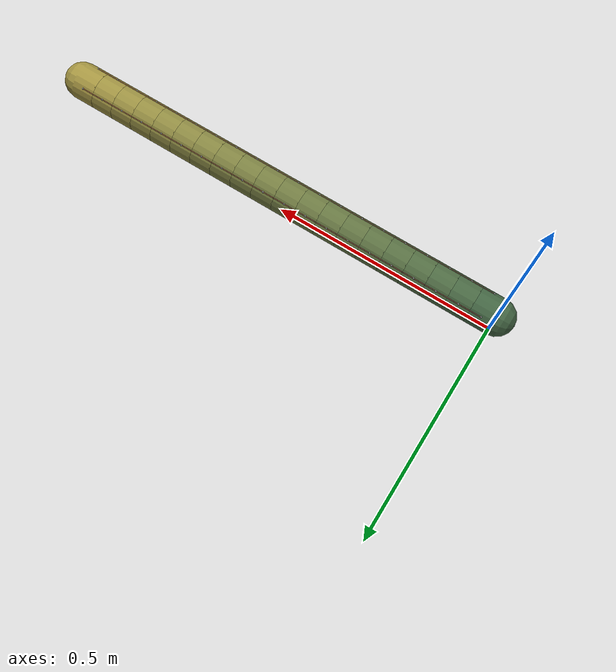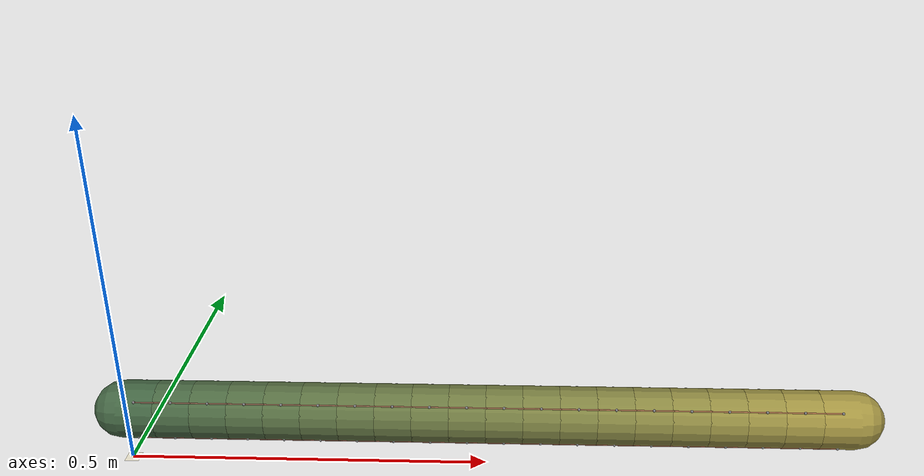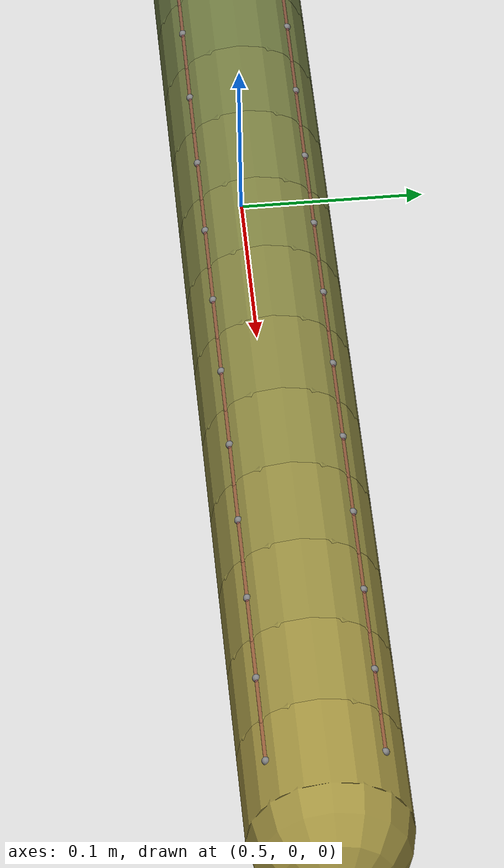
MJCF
<mujoco model="c_elegans_wormbody_v3">
  <compiler angle="radian" autolimits="true"/>
  <option timestep="0.0005" integrator="implicitfast" viscosity="1.0e-3" density="1000"/>
  <visual>
    <headlight diffuse="0.8 0.8 0.8" ambient="0.3 0.3 0.3" specular="0.2 0.2 0.2"/>
    <global offwidth="1200" offheight="800"/>
  </visual>
  <default>
    <joint damping="0.5" stiffness="0.0" limited="true" range="-0.5 0.5"/>
    <geom density="1000" friction="0.5 0.1 0.01"/>
  </default>
  <worldbody>
    <geom name="substrate" type="plane" size="0.01 0.01 0.001" rgba="0.95 0.92 0.82 1"/>
    <light name="overhead" pos="0 0 0.02" dir="0 0 -1" diffuse="0.8 0.8 0.8"/>
    <body name="segment_0" pos="0 0 0.08" euler="0 0 0">
      <freejoint name="root"/>
      <geom name="geom_0" type="capsule" fromto="0 0 0 0.05 0 0" size="0.04" rgba="0.25 0.38 0.25 1"/>
      <site name="s0_DL" pos="0.025000 0.028000 0.028000" size="0.002"/>
      <site name="s0_DR" pos="0.025000 -0.028000 0.028000" size="0.002"/>
      <site name="s0_VL" pos="0.025000 0.028000 -0.028000" size="0.002"/>
      <site name="s0_VR" pos="0.025000 -0.028000 -0.028000" size="0.002"/>
      <body name="segment_1" pos="0.05 0 0">
        <joint name="hinge_1" type="hinge" axis="0 0 1"/>
        <geom name="geom_1" type="capsule" fromto="0 0 0 0.05 0 0" size="0.04" rgba="0.27 0.39 0.25 1"/>
        <site name="s1_DL" pos="0.025000 0.028000 0.028000" size="0.002"/>
        <site name="s1_DR" pos="0.025000 -0.028000 0.028000" size="0.002"/>
        <site name="s1_VL" pos="0.025000 0.028000 -0.028000" size="0.002"/>
        <site name="s1_VR" pos="0.025000 -0.028000 -0.028000" size="0.002"/>
        <body name="segment_2" pos="0.05 0 0">
          <joint name="hinge_2" type="hinge" axis="0 0 1"/>
          <geom name="geom_2" type="capsule" fromto="0 0 0 0.05 0 0" size="0.04" rgba="0.29 0.40 0.25 1"/>
          <site name="s2_DL" pos="0.025000 0.028000 0.028000" size="0.002"/>
          <site name="s2_DR" pos="0.025000 -0.028000 0.028000" size="0.002"/>
          <site name="s2_VL" pos="0.025000 0.028000 -0.028000" size="0.002"/>
          <site name="s2_VR" pos="0.025000 -0.028000 -0.028000" size="0.002"/>
          <body name="segment_3" pos="0.05 0 0">
            <joint name="hinge_3" type="hinge" axis="0 0 1"/>
            <geom name="geom_3" type="capsule" fromto="0 0 0 0.05 0 0" size="0.04" rgba="0.31 0.41 0.25 1"/>
            <site name="s3_DL" pos="0.025000 0.028000 0.028000" size="0.002"/>
            <site name="s3_DR" pos="0.025000 -0.028000 0.028000" size="0.002"/>
            <site name="s3_VL" pos="0.025000 0.028000 -0.028000" size="0.002"/>
            <site name="s3_VR" pos="0.025000 -0.028000 -0.028000" size="0.002"/>
            <body name="segment_4" pos="0.05 0 0">
              <joint name="hinge_4" type="hinge" axis="0 0 1"/>
              <geom name="geom_4" type="capsule" fromto="0 0 0 0.05 0 0" size="0.04" rgba="0.33 0.42 0.25 1"/>
              <site name="s4_DL" pos="0.025000 0.028000 0.028000" size="0.002"/>
              <site name="s4_DR" pos="0.025000 -0.028000 0.028000" size="0.002"/>
              <site name="s4_VL" pos="0.025000 0.028000 -0.028000" size="0.002"/>
              <site name="s4_VR" pos="0.025000 -0.028000 -0.028000" size="0.002"/>
              <body name="segment_5" pos="0.05 0 0">
                <joint name="hinge_5" type="hinge" axis="0 0 1"/>
                <geom name="geom_5" type="capsule" fromto="0 0 0 0.05 0 0" size="0.04" rgba="0.35 0.43 0.25 1"/>
                <site name="s5_DL" pos="0.025000 0.028000 0.028000" size="0.002"/>
                <site name="s5_DR" pos="0.025000 -0.028000 0.028000" size="0.002"/>
                <site name="s5_VL" pos="0.025000 0.028000 -0.028000" size="0.002"/>
                <site name="s5_VR" pos="0.025000 -0.028000 -0.028000" size="0.002"/>
                <body name="segment_6" pos="0.05 0 0">
                  <joint name="hinge_6" type="hinge" axis="0 0 1"/>
                  <geom name="geom_6" type="capsule" fromto="0 0 0 0.05 0 0" size="0.04" rgba="0.37 0.44 0.25 1"/>
                  <site name="s6_DL" pos="0.025000 0.028000 0.028000" size="0.002"/>
                  <site name="s6_DR" pos="0.025000 -0.028000 0.028000" size="0.002"/>
                  <site name="s6_VL" pos="0.025000 0.028000 -0.028000" size="0.002"/>
                  <site name="s6_VR" pos="0.025000 -0.028000 -0.028000" size="0.002"/>
                  <body name="segment_7" pos="0.05 0 0">
                    <joint name="hinge_7" type="hinge" axis="0 0 1"/>
                    <geom name="geom_7" type="capsule" fromto="0 0 0 0.05 0 0" size="0.04" rgba="0.39 0.45 0.25 1"/>
                    <site name="s7_DL" pos="0.025000 0.028000 0.028000" size="0.002"/>
                    <site name="s7_DR" pos="0.025000 -0.028000 0.028000" size="0.002"/>
                    <site name="s7_VL" pos="0.025000 0.028000 -0.028000" size="0.002"/>
                    <site name="s7_VR" pos="0.025000 -0.028000 -0.028000" size="0.002"/>
                    <body name="segment_8" pos="0.05 0 0">
                      <joint name="hinge_8" type="hinge" axis="0 0 1"/>
                      <geom name="geom_8" type="capsule" fromto="0 0 0 0.05 0 0" size="0.04" rgba="0.41 0.46 0.25 1"/>
                      <site name="s8_DL" pos="0.025000 0.028000 0.028000" size="0.002"/>
                      <site name="s8_DR" pos="0.025000 -0.028000 0.028000" size="0.002"/>
                      <site name="s8_VL" pos="0.025000 0.028000 -0.028000" size="0.002"/>
                      <site name="s8_VR" pos="0.025000 -0.028000 -0.028000" size="0.002"/>
                      <body name="segment_9" pos="0.05 0 0">
                        <joint name="hinge_9" type="hinge" axis="0 0 1"/>
                        <geom name="geom_9" type="capsule" fromto="0 0 0 0.05 0 0" size="0.04" rgba="0.43 0.47 0.25 1"/>
                        <site name="s9_DL" pos="0.025000 0.028000 0.028000" size="0.002"/>
                        <site name="s9_DR" pos="0.025000 -0.028000 0.028000" size="0.002"/>
                        <site name="s9_VL" pos="0.025000 0.028000 -0.028000" size="0.002"/>
                        <site name="s9_VR" pos="0.025000 -0.028000 -0.028000" size="0.002"/>
                        <body name="segment_10" pos="0.05 0 0">
                          <joint name="hinge_10" type="hinge" axis="0 0 1"/>
                          <geom name="geom_10" type="capsule" fromto="0 0 0 0.05 0 0" size="0.04" rgba="0.45 0.48 0.25 1"/>
                          <site name="s10_DL" pos="0.025000 0.028000 0.028000" size="0.002"/>
                          <site name="s10_DR" pos="0.025000 -0.028000 0.028000" size="0.002"/>
                          <site name="s10_VL" pos="0.025000 0.028000 -0.028000" size="0.002"/>
                          <site name="s10_VR" pos="0.025000 -0.028000 -0.028000" size="0.002"/>
                          <body name="segment_11" pos="0.05 0 0">
                            <joint name="hinge_11" type="hinge" axis="0 0 1"/>
                            <geom name="geom_11" type="capsule" fromto="0 0 0 0.05 0 0" size="0.04" rgba="0.47 0.49 0.25 1"/>
                            <site name="s11_DL" pos="0.025000 0.028000 0.028000" size="0.002"/>
                            <site name="s11_DR" pos="0.025000 -0.028000 0.028000" size="0.002"/>
                            <site name="s11_VL" pos="0.025000 0.028000 -0.028000" size="0.002"/>
                            <site name="s11_VR" pos="0.025000 -0.028000 -0.028000" size="0.002"/>
                            <body name="segment_12" pos="0.05 0 0">
                              <joint name="hinge_12" type="hinge" axis="0 0 1"/>
                              <geom name="geom_12" type="capsule" fromto="0 0 0 0.05 0 0" size="0.04" rgba="0.49 0.50 0.25 1"/>
                              <site name="s12_DL" pos="0.025000 0.028000 0.028000" size="0.002"/>
                              <site name="s12_DR" pos="0.025000 -0.028000 0.028000" size="0.002"/>
                              <site name="s12_VL" pos="0.025000 0.028000 -0.028000" size="0.002"/>
                              <site name="s12_VR" pos="0.025000 -0.028000 -0.028000" size="0.002"/>
                              <body name="segment_13" pos="0.05 0 0">
                                <joint name="hinge_13" type="hinge" axis="0 0 1"/>
                                <geom name="geom_13" type="capsule" fromto="0 0 0 0.05 0 0" size="0.04" rgba="0.51 0.51 0.25 1"/>
                                <site name="s13_DL" pos="0.025000 0.028000 0.028000" size="0.002"/>
                                <site name="s13_DR" pos="0.025000 -0.028000 0.028000" size="0.002"/>
                                <site name="s13_VL" pos="0.025000 0.028000 -0.028000" size="0.002"/>
                                <site name="s13_VR" pos="0.025000 -0.028000 -0.028000" size="0.002"/>
                                <body name="segment_14" pos="0.05 0 0">
                                  <joint name="hinge_14" type="hinge" axis="0 0 1"/>
                                  <geom name="geom_14" type="capsule" fromto="0 0 0 0.05 0 0" size="0.04" rgba="0.53 0.52 0.25 1"/>
                                  <site name="s14_DL" pos="0.025000 0.028000 0.028000" size="0.002"/>
                                  <site name="s14_DR" pos="0.025000 -0.028000 0.028000" size="0.002"/>
                                  <site name="s14_VL" pos="0.025000 0.028000 -0.028000" size="0.002"/>
                                  <site name="s14_VR" pos="0.025000 -0.028000 -0.028000" size="0.002"/>
                                  <body name="segment_15" pos="0.05 0 0">
                                    <joint name="hinge_15" type="hinge" axis="0 0 1"/>
                                    <geom name="geom_15" type="capsule" fromto="0 0 0 0.05 0 0" size="0.04" rgba="0.55 0.53 0.25 1"/>
                                    <site name="s15_DL" pos="0.025000 0.028000 0.028000" size="0.002"/>
                                    <site name="s15_DR" pos="0.025000 -0.028000 0.028000" size="0.002"/>
                                    <site name="s15_VL" pos="0.025000 0.028000 -0.028000" size="0.002"/>
                                    <site name="s15_VR" pos="0.025000 -0.028000 -0.028000" size="0.002"/>
                                    <body name="segment_16" pos="0.05 0 0">
                                      <joint name="hinge_16" type="hinge" axis="0 0 1"/>
                                      <geom name="geom_16" type="capsule" fromto="0 0 0 0.05 0 0" size="0.04" rgba="0.57 0.54 0.25 1"/>
                                      <site name="s16_DL" pos="0.025000 0.028000 0.028000" size="0.002"/>
                                      <site name="s16_DR" pos="0.025000 -0.028000 0.028000" size="0.002"/>
                                      <site name="s16_VL" pos="0.025000 0.028000 -0.028000" size="0.002"/>
                                      <site name="s16_VR" pos="0.025000 -0.028000 -0.028000" size="0.002"/>
                                      <body name="segment_17" pos="0.05 0 0">
                                        <joint name="hinge_17" type="hinge" axis="0 0 1"/>
                                        <geom name="geom_17" type="capsule" fromto="0 0 0 0.05 0 0" size="0.04" rgba="0.59 0.55 0.25 1"/>
                                        <site name="s17_DL" pos="0.025000 0.028000 0.028000" size="0.002"/>
                                        <site name="s17_DR" pos="0.025000 -0.028000 0.028000" size="0.002"/>
                                        <site name="s17_VL" pos="0.025000 0.028000 -0.028000" size="0.002"/>
                                        <site name="s17_VR" pos="0.025000 -0.028000 -0.028000" size="0.002"/>
                                        <body name="segment_18" pos="0.05 0 0">
                                          <joint name="hinge_18" type="hinge" axis="0 0 1"/>
                                          <geom name="geom_18" type="capsule" fromto="0 0 0 0.05 0 0" size="0.04" rgba="0.61 0.56 0.25 1"/>
                                          <site name="s18_DL" pos="0.025000 0.028000 0.028000" size="0.002"/>
                                          <site name="s18_DR" pos="0.025000 -0.028000 0.028000" size="0.002"/>
                                          <site name="s18_VL" pos="0.025000 0.028000 -0.028000" size="0.002"/>
                                          <site name="s18_VR" pos="0.025000 -0.028000 -0.028000" size="0.002"/>
                                          <body name="segment_19" pos="0.05 0 0">
                                            <joint name="hinge_19" type="hinge" axis="0 0 1"/>
                                            <geom name="geom_19" type="capsule" fromto="0 0 0 0.05 0 0" size="0.04" rgba="0.63 0.57 0.25 1"/>
                                            <site name="s19_DL" pos="0.025000 0.028000 0.028000" size="0.002"/>
                                            <site name="s19_DR" pos="0.025000 -0.028000 0.028000" size="0.002"/>
                                            <site name="s19_VL" pos="0.025000 0.028000 -0.028000" size="0.002"/>
                                            <site name="s19_VR" pos="0.025000 -0.028000 -0.028000" size="0.002"/>
                                          </body>
                                        </body>
                                      </body>
                                    </body>
                                  </body>
                                </body>
                              </body>
                            </body>
                          </body>
                        </body>
                      </body>
                    </body>
                  </body>
                </body>
              </body>
            </body>
          </body>
        </body>
      </body>
    </body>
  </worldbody>
  <tendon>
    <spatial name="tendon_0_DL" width="0.001" rgba="0.7 0.3 0.3 0.5">
      <site site="s0_DL"/>
      <site site="s1_DL"/>
    </spatial>
    <spatial name="tendon_0_DR" width="0.001" rgba="0.7 0.3 0.3 0.5">
      <site site="s0_DR"/>
      <site site="s1_DR"/>
    </spatial>
    <spatial name="tendon_0_VL" width="0.001" rgba="0.7 0.3 0.3 0.5">
      <site site="s0_VL"/>
      <site site="s1_VL"/>
    </spatial>
    <spatial name="tendon_0_VR" width="0.001" rgba="0.7 0.3 0.3 0.5">
      <site site="s0_VR"/>
      <site site="s1_VR"/>
    </spatial>
    <spatial name="tendon_1_DL" width="0.001" rgba="0.7 0.3 0.3 0.5">
      <site site="s1_DL"/>
      <site site="s2_DL"/>
    </spatial>
    <spatial name="tendon_1_DR" width="0.001" rgba="0.7 0.3 0.3 0.5">
      <site site="s1_DR"/>
      <site site="s2_DR"/>
    </spatial>
    <spatial name="tendon_1_VL" width="0.001" rgba="0.7 0.3 0.3 0.5">
      <site site="s1_VL"/>
      <site site="s2_VL"/>
    </spatial>
    <spatial name="tendon_1_VR" width="0.001" rgba="0.7 0.3 0.3 0.5">
      <site site="s1_VR"/>
      <site site="s2_VR"/>
    </spatial>
    <spatial name="tendon_2_DL" width="0.001" rgba="0.7 0.3 0.3 0.5">
      <site site="s2_DL"/>
      <site site="s3_DL"/>
    </spatial>
    <spatial name="tendon_2_DR" width="0.001" rgba="0.7 0.3 0.3 0.5">
      <site site="s2_DR"/>
      <site site="s3_DR"/>
    </spatial>
    <spatial name="tendon_2_VL" width="0.001" rgba="0.7 0.3 0.3 0.5">
      <site site="s2_VL"/>
      <site site="s3_VL"/>
    </spatial>
    <spatial name="tendon_2_VR" width="0.001" rgba="0.7 0.3 0.3 0.5">
      <site site="s2_VR"/>
      <site site="s3_VR"/>
    </spatial>
    <spatial name="tendon_3_DL" width="0.001" rgba="0.7 0.3 0.3 0.5">
      <site site="s3_DL"/>
      <site site="s4_DL"/>
    </spatial>
    <spatial name="tendon_3_DR" width="0.001" rgba="0.7 0.3 0.3 0.5">
      <site site="s3_DR"/>
      <site site="s4_DR"/>
    </spatial>
    <spatial name="tendon_3_VL" width="0.001" rgba="0.7 0.3 0.3 0.5">
      <site site="s3_VL"/>
      <site site="s4_VL"/>
    </spatial>
    <spatial name="tendon_3_VR" width="0.001" rgba="0.7 0.3 0.3 0.5">
      <site site="s3_VR"/>
      <site site="s4_VR"/>
    </spatial>
    <spatial name="tendon_4_DL" width="0.001" rgba="0.7 0.3 0.3 0.5">
      <site site="s4_DL"/>
      <site site="s5_DL"/>
    </spatial>
    <spatial name="tendon_4_DR" width="0.001" rgba="0.7 0.3 0.3 0.5">
      <site site="s4_DR"/>
      <site site="s5_DR"/>
    </spatial>
    <spatial name="tendon_4_VL" width="0.001" rgba="0.7 0.3 0.3 0.5">
      <site site="s4_VL"/>
      <site site="s5_VL"/>
    </spatial>
    <spatial name="tendon_4_VR" width="0.001" rgba="0.7 0.3 0.3 0.5">
      <site site="s4_VR"/>
      <site site="s5_VR"/>
    </spatial>
    <spatial name="tendon_5_DL" width="0.001" rgba="0.7 0.3 0.3 0.5">
      <site site="s5_DL"/>
      <site site="s6_DL"/>
    </spatial>
    <spatial name="tendon_5_DR" width="0.001" rgba="0.7 0.3 0.3 0.5">
      <site site="s5_DR"/>
      <site site="s6_DR"/>
    </spatial>
    <spatial name="tendon_5_VL" width="0.001" rgba="0.7 0.3 0.3 0.5">
      <site site="s5_VL"/>
      <site site="s6_VL"/>
    </spatial>
    <spatial name="tendon_5_VR" width="0.001" rgba="0.7 0.3 0.3 0.5">
      <site site="s5_VR"/>
      <site site="s6_VR"/>
    </spatial>
    <spatial name="tendon_6_DL" width="0.001" rgba="0.7 0.3 0.3 0.5">
      <site site="s6_DL"/>
      <site site="s7_DL"/>
    </spatial>
    <spatial name="tendon_6_DR" width="0.001" rgba="0.7 0.3 0.3 0.5">
      <site site="s6_DR"/>
      <site site="s7_DR"/>
    </spatial>
    <spatial name="tendon_6_VL" width="0.001" rgba="0.7 0.3 0.3 0.5">
      <site site="s6_VL"/>
      <site site="s7_VL"/>
    </spatial>
    <spatial name="tendon_6_VR" width="0.001" rgba="0.7 0.3 0.3 0.5">
      <site site="s6_VR"/>
      <site site="s7_VR"/>
    </spatial>
    <spatial name="tendon_7_DL" width="0.001" rgba="0.7 0.3 0.3 0.5">
      <site site="s7_DL"/>
      <site site="s8_DL"/>
    </spatial>
    <spatial name="tendon_7_DR" width="0.001" rgba="0.7 0.3 0.3 0.5">
      <site site="s7_DR"/>
      <site site="s8_DR"/>
    </spatial>
    <spatial name="tendon_7_VL" width="0.001" rgba="0.7 0.3 0.3 0.5">
      <site site="s7_VL"/>
      <site site="s8_VL"/>
    </spatial>
    <spatial name="tendon_7_VR" width="0.001" rgba="0.7 0.3 0.3 0.5">
      <site site="s7_VR"/>
      <site site="s8_VR"/>
    </spatial>
    <spatial name="tendon_8_DL" width="0.001" rgba="0.7 0.3 0.3 0.5">
      <site site="s8_DL"/>
      <site site="s9_DL"/>
    </spatial>
    <spatial name="tendon_8_DR" width="0.001" rgba="0.7 0.3 0.3 0.5">
      <site site="s8_DR"/>
      <site site="s9_DR"/>
    </spatial>
    <spatial name="tendon_8_VL" width="0.001" rgba="0.7 0.3 0.3 0.5">
      <site site="s8_VL"/>
      <site site="s9_VL"/>
    </spatial>
    <spatial name="tendon_8_VR" width="0.001" rgba="0.7 0.3 0.3 0.5">
      <site site="s8_VR"/>
      <site site="s9_VR"/>
    </spatial>
    <spatial name="tendon_9_DL" width="0.001" rgba="0.7 0.3 0.3 0.5">
      <site site="s9_DL"/>
      <site site="s10_DL"/>
    </spatial>
    <spatial name="tendon_9_DR" width="0.001" rgba="0.7 0.3 0.3 0.5">
      <site site="s9_DR"/>
      <site site="s10_DR"/>
    </spatial>
    <spatial name="tendon_9_VL" width="0.001" rgba="0.7 0.3 0.3 0.5">
      <site site="s9_VL"/>
      <site site="s10_VL"/>
    </spatial>
    <spatial name="tendon_9_VR" width="0.001" rgba="0.7 0.3 0.3 0.5">
      <site site="s9_VR"/>
      <site site="s10_VR"/>
    </spatial>
    <spatial name="tendon_10_DL" width="0.001" rgba="0.7 0.3 0.3 0.5">
      <site site="s10_DL"/>
      <site site="s11_DL"/>
    </spatial>
    <spatial name="tendon_10_DR" width="0.001" rgba="0.7 0.3 0.3 0.5">
      <site site="s10_DR"/>
      <site site="s11_DR"/>
    </spatial>
    <spatial name="tendon_10_VL" width="0.001" rgba="0.7 0.3 0.3 0.5">
      <site site="s10_VL"/>
      <site site="s11_VL"/>
    </spatial>
    <spatial name="tendon_10_VR" width="0.001" rgba="0.7 0.3 0.3 0.5">
      <site site="s10_VR"/>
      <site site="s11_VR"/>
    </spatial>
    <spatial name="tendon_11_DL" width="0.001" rgba="0.7 0.3 0.3 0.5">
      <site site="s11_DL"/>
      <site site="s12_DL"/>
    </spatial>
    <spatial name="tendon_11_DR" width="0.001" rgba="0.7 0.3 0.3 0.5">
      <site site="s11_DR"/>
      <site site="s12_DR"/>
    </spatial>
    <spatial name="tendon_11_VL" width="0.001" rgba="0.7 0.3 0.3 0.5">
      <site site="s11_VL"/>
      <site site="s12_VL"/>
    </spatial>
    <spatial name="tendon_11_VR" width="0.001" rgba="0.7 0.3 0.3 0.5">
      <site site="s11_VR"/>
      <site site="s12_VR"/>
    </spatial>
    <spatial name="tendon_12_DL" width="0.001" rgba="0.7 0.3 0.3 0.5">
      <site site="s12_DL"/>
      <site site="s13_DL"/>
    </spatial>
    <spatial name="tendon_12_DR" width="0.001" rgba="0.7 0.3 0.3 0.5">
      <site site="s12_DR"/>
      <site site="s13_DR"/>
    </spatial>
    <spatial name="tendon_12_VL" width="0.001" rgba="0.7 0.3 0.3 0.5">
      <site site="s12_VL"/>
      <site site="s13_VL"/>
    </spatial>
    <spatial name="tendon_12_VR" width="0.001" rgba="0.7 0.3 0.3 0.5">
      <site site="s12_VR"/>
      <site site="s13_VR"/>
    </spatial>
    <spatial name="tendon_13_DL" width="0.001" rgba="0.7 0.3 0.3 0.5">
      <site site="s13_DL"/>
      <site site="s14_DL"/>
    </spatial>
    <spatial name="tendon_13_DR" width="0.001" rgba="0.7 0.3 0.3 0.5">
      <site site="s13_DR"/>
      <site site="s14_DR"/>
    </spatial>
    <spatial name="tendon_13_VL" width="0.001" rgba="0.7 0.3 0.3 0.5">
      <site site="s13_VL"/>
      <site site="s14_VL"/>
    </spatial>
    <spatial name="tendon_13_VR" width="0.001" rgba="0.7 0.3 0.3 0.5">
      <site site="s13_VR"/>
      <site site="s14_VR"/>
    </spatial>
    <spatial name="tendon_14_DL" width="0.001" rgba="0.7 0.3 0.3 0.5">
      <site site="s14_DL"/>
      <site site="s15_DL"/>
    </spatial>
    <spatial name="tendon_14_DR" width="0.001" rgba="0.7 0.3 0.3 0.5">
      <site site="s14_DR"/>
      <site site="s15_DR"/>
    </spatial>
    <spatial name="tendon_14_VL" width="0.001" rgba="0.7 0.3 0.3 0.5">
      <site site="s14_VL"/>
      <site site="s15_VL"/>
    </spatial>
    <spatial name="tendon_14_VR" width="0.001" rgba="0.7 0.3 0.3 0.5">
      <site site="s14_VR"/>
      <site site="s15_VR"/>
    </spatial>
    <spatial name="tendon_15_DL" width="0.001" rgba="0.7 0.3 0.3 0.5">
      <site site="s15_DL"/>
      <site site="s16_DL"/>
    </spatial>
    <spatial name="tendon_15_DR" width="0.001" rgba="0.7 0.3 0.3 0.5">
      <site site="s15_DR"/>
      <site site="s16_DR"/>
    </spatial>
    <spatial name="tendon_15_VL" width="0.001" rgba="0.7 0.3 0.3 0.5">
      <site site="s15_VL"/>
      <site site="s16_VL"/>
    </spatial>
    <spatial name="tendon_15_VR" width="0.001" rgba="0.7 0.3 0.3 0.5">
      <site site="s15_VR"/>
      <site site="s16_VR"/>
    </spatial>
    <spatial name="tendon_16_DL" width="0.001" rgba="0.7 0.3 0.3 0.5">
      <site site="s16_DL"/>
      <site site="s17_DL"/>
    </spatial>
    <spatial name="tendon_16_DR" width="0.001" rgba="0.7 0.3 0.3 0.5">
      <site site="s16_DR"/>
      <site site="s17_DR"/>
    </spatial>
    <spatial name="tendon_16_VL" width="0.001" rgba="0.7 0.3 0.3 0.5">
      <site site="s16_VL"/>
      <site site="s17_VL"/>
    </spatial>
    <spatial name="tendon_16_VR" width="0.001" rgba="0.7 0.3 0.3 0.5">
      <site site="s16_VR"/>
      <site site="s17_VR"/>
    </spatial>
    <spatial name="tendon_17_DL" width="0.001" rgba="0.7 0.3 0.3 0.5">
      <site site="s17_DL"/>
      <site site="s18_DL"/>
    </spatial>
    <spatial name="tendon_17_DR" width="0.001" rgba="0.7 0.3 0.3 0.5">
      <site site="s17_DR"/>
      <site site="s18_DR"/>
    </spatial>
    <spatial name="tendon_17_VL" width="0.001" rgba="0.7 0.3 0.3 0.5">
      <site site="s17_VL"/>
      <site site="s18_VL"/>
    </spatial>
    <spatial name="tendon_17_VR" width="0.001" rgba="0.7 0.3 0.3 0.5">
      <site site="s17_VR"/>
      <site site="s18_VR"/>
    </spatial>
    <spatial name="tendon_18_DL" width="0.001" rgba="0.7 0.3 0.3 0.5">
      <site site="s18_DL"/>
      <site site="s19_DL"/>
    </spatial>
    <spatial name="tendon_18_DR" width="0.001" rgba="0.7 0.3 0.3 0.5">
      <site site="s18_DR"/>
      <site site="s19_DR"/>
    </spatial>
    <spatial name="tendon_18_VL" width="0.001" rgba="0.7 0.3 0.3 0.5">
      <site site="s18_VL"/>
      <site site="s19_VL"/>
    </spatial>
    <spatial name="tendon_18_VR" width="0.001" rgba="0.7 0.3 0.3 0.5">
      <site site="s18_VR"/>
      <site site="s19_VR"/>
    </spatial>
  </tendon>
  <actuator>
    <!-- Legacy hinge actuators (CPG backwards compat) -->
    <position name="act_hinge_1" joint="hinge_1" kp="60.0" kv="2.0" ctrllimited="true" ctrlrange="-0.5 0.5"/>
    <position name="act_hinge_2" joint="hinge_2" kp="60.0" kv="2.0" ctrllimited="true" ctrlrange="-0.5 0.5"/>
    <position name="act_hinge_3" joint="hinge_3" kp="60.0" kv="2.0" ctrllimited="true" ctrlrange="-0.5 0.5"/>
    <position name="act_hinge_4" joint="hinge_4" kp="60.0" kv="2.0" ctrllimited="true" ctrlrange="-0.5 0.5"/>
    <position name="act_hinge_5" joint="hinge_5" kp="60.0" kv="2.0" ctrllimited="true" ctrlrange="-0.5 0.5"/>
    <position name="act_hinge_6" joint="hinge_6" kp="60.0" kv="2.0" ctrllimited="true" ctrlrange="-0.5 0.5"/>
    <position name="act_hinge_7" joint="hinge_7" kp="60.0" kv="2.0" ctrllimited="true" ctrlrange="-0.5 0.5"/>
    <position name="act_hinge_8" joint="hinge_8" kp="60.0" kv="2.0" ctrllimited="true" ctrlrange="-0.5 0.5"/>
    <position name="act_hinge_9" joint="hinge_9" kp="60.0" kv="2.0" ctrllimited="true" ctrlrange="-0.5 0.5"/>
    <position name="act_hinge_10" joint="hinge_10" kp="60.0" kv="2.0" ctrllimited="true" ctrlrange="-0.5 0.5"/>
    <position name="act_hinge_11" joint="hinge_11" kp="60.0" kv="2.0" ctrllimited="true" ctrlrange="-0.5 0.5"/>
    <position name="act_hinge_12" joint="hinge_12" kp="60.0" kv="2.0" ctrllimited="true" ctrlrange="-0.5 0.5"/>
    <position name="act_hinge_13" joint="hinge_13" kp="60.0" kv="2.0" ctrllimited="true" ctrlrange="-0.5 0.5"/>
    <position name="act_hinge_14" joint="hinge_14" kp="60.0" kv="2.0" ctrllimited="true" ctrlrange="-0.5 0.5"/>
    <position name="act_hinge_15" joint="hinge_15" kp="60.0" kv="2.0" ctrllimited="true" ctrlrange="-0.5 0.5"/>
    <position name="act_hinge_16" joint="hinge_16" kp="60.0" kv="2.0" ctrllimited="true" ctrlrange="-0.5 0.5"/>
    <position name="act_hinge_17" joint="hinge_17" kp="60.0" kv="2.0" ctrllimited="true" ctrlrange="-0.5 0.5"/>
    <position name="act_hinge_18" joint="hinge_18" kp="60.0" kv="2.0" ctrllimited="true" ctrlrange="-0.5 0.5"/>
    <position name="act_hinge_19" joint="hinge_19" kp="60.0" kv="2.0" ctrllimited="true" ctrlrange="-0.5 0.5"/>
    <!-- Hill-type quadrant muscles (T4-1 driver) -->
    <muscle name="muscle_0_DL" tendon="tendon_0_DL" timeconst="0.01 0.04" range="0.7 1.3" force="5.0" scale="1.0" lengthrange="0.01 0.08" ctrllimited="true" ctrlrange="0 1"/>
    <muscle name="muscle_0_DR" tendon="tendon_0_DR" timeconst="0.01 0.04" range="0.7 1.3" force="5.0" scale="1.0" lengthrange="0.01 0.08" ctrllimited="true" ctrlrange="0 1"/>
    <muscle name="muscle_0_VL" tendon="tendon_0_VL" timeconst="0.01 0.04" range="0.7 1.3" force="5.0" scale="1.0" lengthrange="0.01 0.08" ctrllimited="true" ctrlrange="0 1"/>
    <muscle name="muscle_0_VR" tendon="tendon_0_VR" timeconst="0.01 0.04" range="0.7 1.3" force="5.0" scale="1.0" lengthrange="0.01 0.08" ctrllimited="true" ctrlrange="0 1"/>
    <muscle name="muscle_1_DL" tendon="tendon_1_DL" timeconst="0.01 0.04" range="0.7 1.3" force="5.0" scale="1.0" lengthrange="0.01 0.08" ctrllimited="true" ctrlrange="0 1"/>
    <muscle name="muscle_1_DR" tendon="tendon_1_DR" timeconst="0.01 0.04" range="0.7 1.3" force="5.0" scale="1.0" lengthrange="0.01 0.08" ctrllimited="true" ctrlrange="0 1"/>
    <muscle name="muscle_1_VL" tendon="tendon_1_VL" timeconst="0.01 0.04" range="0.7 1.3" force="5.0" scale="1.0" lengthrange="0.01 0.08" ctrllimited="true" ctrlrange="0 1"/>
    <muscle name="muscle_1_VR" tendon="tendon_1_VR" timeconst="0.01 0.04" range="0.7 1.3" force="5.0" scale="1.0" lengthrange="0.01 0.08" ctrllimited="true" ctrlrange="0 1"/>
    <muscle name="muscle_2_DL" tendon="tendon_2_DL" timeconst="0.01 0.04" range="0.7 1.3" force="5.0" scale="1.0" lengthrange="0.01 0.08" ctrllimited="true" ctrlrange="0 1"/>
    <muscle name="muscle_2_DR" tendon="tendon_2_DR" timeconst="0.01 0.04" range="0.7 1.3" force="5.0" scale="1.0" lengthrange="0.01 0.08" ctrllimited="true" ctrlrange="0 1"/>
    <muscle name="muscle_2_VL" tendon="tendon_2_VL" timeconst="0.01 0.04" range="0.7 1.3" force="5.0" scale="1.0" lengthrange="0.01 0.08" ctrllimited="true" ctrlrange="0 1"/>
    <muscle name="muscle_2_VR" tendon="tendon_2_VR" timeconst="0.01 0.04" range="0.7 1.3" force="5.0" scale="1.0" lengthrange="0.01 0.08" ctrllimited="true" ctrlrange="0 1"/>
    <muscle name="muscle_3_DL" tendon="tendon_3_DL" timeconst="0.01 0.04" range="0.7 1.3" force="5.0" scale="1.0" lengthrange="0.01 0.08" ctrllimited="true" ctrlrange="0 1"/>
    <muscle name="muscle_3_DR" tendon="tendon_3_DR" timeconst="0.01 0.04" range="0.7 1.3" force="5.0" scale="1.0" lengthrange="0.01 0.08" ctrllimited="true" ctrlrange="0 1"/>
    <muscle name="muscle_3_VL" tendon="tendon_3_VL" timeconst="0.01 0.04" range="0.7 1.3" force="5.0" scale="1.0" lengthrange="0.01 0.08" ctrllimited="true" ctrlrange="0 1"/>
    <muscle name="muscle_3_VR" tendon="tendon_3_VR" timeconst="0.01 0.04" range="0.7 1.3" force="5.0" scale="1.0" lengthrange="0.01 0.08" ctrllimited="true" ctrlrange="0 1"/>
    <muscle name="muscle_4_DL" tendon="tendon_4_DL" timeconst="0.01 0.04" range="0.7 1.3" force="5.0" scale="1.0" lengthrange="0.01 0.08" ctrllimited="true" ctrlrange="0 1"/>
    <muscle name="muscle_4_DR" tendon="tendon_4_DR" timeconst="0.01 0.04" range="0.7 1.3" force="5.0" scale="1.0" lengthrange="0.01 0.08" ctrllimited="true" ctrlrange="0 1"/>
    <muscle name="muscle_4_VL" tendon="tendon_4_VL" timeconst="0.01 0.04" range="0.7 1.3" force="5.0" scale="1.0" lengthrange="0.01 0.08" ctrllimited="true" ctrlrange="0 1"/>
    <muscle name="muscle_4_VR" tendon="tendon_4_VR" timeconst="0.01 0.04" range="0.7 1.3" force="5.0" scale="1.0" lengthrange="0.01 0.08" ctrllimited="true" ctrlrange="0 1"/>
    <muscle name="muscle_5_DL" tendon="tendon_5_DL" timeconst="0.01 0.04" range="0.7 1.3" force="5.0" scale="1.0" lengthrange="0.01 0.08" ctrllimited="true" ctrlrange="0 1"/>
    <muscle name="muscle_5_DR" tendon="tendon_5_DR" timeconst="0.01 0.04" range="0.7 1.3" force="5.0" scale="1.0" lengthrange="0.01 0.08" ctrllimited="true" ctrlrange="0 1"/>
    <muscle name="muscle_5_VL" tendon="tendon_5_VL" timeconst="0.01 0.04" range="0.7 1.3" force="5.0" scale="1.0" lengthrange="0.01 0.08" ctrllimited="true" ctrlrange="0 1"/>
    <muscle name="muscle_5_VR" tendon="tendon_5_VR" timeconst="0.01 0.04" range="0.7 1.3" force="5.0" scale="1.0" lengthrange="0.01 0.08" ctrllimited="true" ctrlrange="0 1"/>
    <muscle name="muscle_6_DL" tendon="tendon_6_DL" timeconst="0.01 0.04" range="0.7 1.3" force="5.0" scale="1.0" lengthrange="0.01 0.08" ctrllimited="true" ctrlrange="0 1"/>
    <muscle name="muscle_6_DR" tendon="tendon_6_DR" timeconst="0.01 0.04" range="0.7 1.3" force="5.0" scale="1.0" lengthrange="0.01 0.08" ctrllimited="true" ctrlrange="0 1"/>
    <muscle name="muscle_6_VL" tendon="tendon_6_VL" timeconst="0.01 0.04" range="0.7 1.3" force="5.0" scale="1.0" lengthrange="0.01 0.08" ctrllimited="true" ctrlrange="0 1"/>
    <muscle name="muscle_6_VR" tendon="tendon_6_VR" timeconst="0.01 0.04" range="0.7 1.3" force="5.0" scale="1.0" lengthrange="0.01 0.08" ctrllimited="true" ctrlrange="0 1"/>
    <muscle name="muscle_7_DL" tendon="tendon_7_DL" timeconst="0.01 0.04" range="0.7 1.3" force="5.0" scale="1.0" lengthrange="0.01 0.08" ctrllimited="true" ctrlrange="0 1"/>
    <muscle name="muscle_7_DR" tendon="tendon_7_DR" timeconst="0.01 0.04" range="0.7 1.3" force="5.0" scale="1.0" lengthrange="0.01 0.08" ctrllimited="true" ctrlrange="0 1"/>
    <muscle name="muscle_7_VL" tendon="tendon_7_VL" timeconst="0.01 0.04" range="0.7 1.3" force="5.0" scale="1.0" lengthrange="0.01 0.08" ctrllimited="true" ctrlrange="0 1"/>
    <muscle name="muscle_7_VR" tendon="tendon_7_VR" timeconst="0.01 0.04" range="0.7 1.3" force="5.0" scale="1.0" lengthrange="0.01 0.08" ctrllimited="true" ctrlrange="0 1"/>
    <muscle name="muscle_8_DL" tendon="tendon_8_DL" timeconst="0.01 0.04" range="0.7 1.3" force="5.0" scale="1.0" lengthrange="0.01 0.08" ctrllimited="true" ctrlrange="0 1"/>
    <muscle name="muscle_8_DR" tendon="tendon_8_DR" timeconst="0.01 0.04" range="0.7 1.3" force="5.0" scale="1.0" lengthrange="0.01 0.08" ctrllimited="true" ctrlrange="0 1"/>
    <muscle name="muscle_8_VL" tendon="tendon_8_VL" timeconst="0.01 0.04" range="0.7 1.3" force="5.0" scale="1.0" lengthrange="0.01 0.08" ctrllimited="true" ctrlrange="0 1"/>
    <muscle name="muscle_8_VR" tendon="tendon_8_VR" timeconst="0.01 0.04" range="0.7 1.3" force="5.0" scale="1.0" lengthrange="0.01 0.08" ctrllimited="true" ctrlrange="0 1"/>
    <muscle name="muscle_9_DL" tendon="tendon_9_DL" timeconst="0.01 0.04" range="0.7 1.3" force="5.0" scale="1.0" lengthrange="0.01 0.08" ctrllimited="true" ctrlrange="0 1"/>
    <muscle name="muscle_9_DR" tendon="tendon_9_DR" timeconst="0.01 0.04" range="0.7 1.3" force="5.0" scale="1.0" lengthrange="0.01 0.08" ctrllimited="true" ctrlrange="0 1"/>
    <muscle name="muscle_9_VL" tendon="tendon_9_VL" timeconst="0.01 0.04" range="0.7 1.3" force="5.0" scale="1.0" lengthrange="0.01 0.08" ctrllimited="true" ctrlrange="0 1"/>
    <muscle name="muscle_9_VR" tendon="tendon_9_VR" timeconst="0.01 0.04" range="0.7 1.3" force="5.0" scale="1.0" lengthrange="0.01 0.08" ctrllimited="true" ctrlrange="0 1"/>
    <muscle name="muscle_10_DL" tendon="tendon_10_DL" timeconst="0.01 0.04" range="0.7 1.3" force="5.0" scale="1.0" lengthrange="0.01 0.08" ctrllimited="true" ctrlrange="0 1"/>
    <muscle name="muscle_10_DR" tendon="tendon_10_DR" timeconst="0.01 0.04" range="0.7 1.3" force="5.0" scale="1.0" lengthrange="0.01 0.08" ctrllimited="true" ctrlrange="0 1"/>
    <muscle name="muscle_10_VL" tendon="tendon_10_VL" timeconst="0.01 0.04" range="0.7 1.3" force="5.0" scale="1.0" lengthrange="0.01 0.08" ctrllimited="true" ctrlrange="0 1"/>
    <muscle name="muscle_10_VR" tendon="tendon_10_VR" timeconst="0.01 0.04" range="0.7 1.3" force="5.0" scale="1.0" lengthrange="0.01 0.08" ctrllimited="true" ctrlrange="0 1"/>
    <muscle name="muscle_11_DL" tendon="tendon_11_DL" timeconst="0.01 0.04" range="0.7 1.3" force="5.0" scale="1.0" lengthrange="0.01 0.08" ctrllimited="true" ctrlrange="0 1"/>
    <muscle name="muscle_11_DR" tendon="tendon_11_DR" timeconst="0.01 0.04" range="0.7 1.3" force="5.0" scale="1.0" lengthrange="0.01 0.08" ctrllimited="true" ctrlrange="0 1"/>
    <muscle name="muscle_11_VL" tendon="tendon_11_VL" timeconst="0.01 0.04" range="0.7 1.3" force="5.0" scale="1.0" lengthrange="0.01 0.08" ctrllimited="true" ctrlrange="0 1"/>
    <muscle name="muscle_11_VR" tendon="tendon_11_VR" timeconst="0.01 0.04" range="0.7 1.3" force="5.0" scale="1.0" lengthrange="0.01 0.08" ctrllimited="true" ctrlrange="0 1"/>
    <muscle name="muscle_12_DL" tendon="tendon_12_DL" timeconst="0.01 0.04" range="0.7 1.3" force="5.0" scale="1.0" lengthrange="0.01 0.08" ctrllimited="true" ctrlrange="0 1"/>
    <muscle name="muscle_12_DR" tendon="tendon_12_DR" timeconst="0.01 0.04" range="0.7 1.3" force="5.0" scale="1.0" lengthrange="0.01 0.08" ctrllimited="true" ctrlrange="0 1"/>
    <muscle name="muscle_12_VL" tendon="tendon_12_VL" timeconst="0.01 0.04" range="0.7 1.3" force="5.0" scale="1.0" lengthrange="0.01 0.08" ctrllimited="true" ctrlrange="0 1"/>
    <muscle name="muscle_12_VR" tendon="tendon_12_VR" timeconst="0.01 0.04" range="0.7 1.3" force="5.0" scale="1.0" lengthrange="0.01 0.08" ctrllimited="true" ctrlrange="0 1"/>
    <muscle name="muscle_13_DL" tendon="tendon_13_DL" timeconst="0.01 0.04" range="0.7 1.3" force="5.0" scale="1.0" lengthrange="0.01 0.08" ctrllimited="true" ctrlrange="0 1"/>
    <muscle name="muscle_13_DR" tendon="tendon_13_DR" timeconst="0.01 0.04" range="0.7 1.3" force="5.0" scale="1.0" lengthrange="0.01 0.08" ctrllimited="true" ctrlrange="0 1"/>
    <muscle name="muscle_13_VL" tendon="tendon_13_VL" timeconst="0.01 0.04" range="0.7 1.3" force="5.0" scale="1.0" lengthrange="0.01 0.08" ctrllimited="true" ctrlrange="0 1"/>
    <muscle name="muscle_13_VR" tendon="tendon_13_VR" timeconst="0.01 0.04" range="0.7 1.3" force="5.0" scale="1.0" lengthrange="0.01 0.08" ctrllimited="true" ctrlrange="0 1"/>
    <muscle name="muscle_14_DL" tendon="tendon_14_DL" timeconst="0.01 0.04" range="0.7 1.3" force="5.0" scale="1.0" lengthrange="0.01 0.08" ctrllimited="true" ctrlrange="0 1"/>
    <muscle name="muscle_14_DR" tendon="tendon_14_DR" timeconst="0.01 0.04" range="0.7 1.3" force="5.0" scale="1.0" lengthrange="0.01 0.08" ctrllimited="true" ctrlrange="0 1"/>
    <muscle name="muscle_14_VL" tendon="tendon_14_VL" timeconst="0.01 0.04" range="0.7 1.3" force="5.0" scale="1.0" lengthrange="0.01 0.08" ctrllimited="true" ctrlrange="0 1"/>
    <muscle name="muscle_14_VR" tendon="tendon_14_VR" timeconst="0.01 0.04" range="0.7 1.3" force="5.0" scale="1.0" lengthrange="0.01 0.08" ctrllimited="true" ctrlrange="0 1"/>
    <muscle name="muscle_15_DL" tendon="tendon_15_DL" timeconst="0.01 0.04" range="0.7 1.3" force="5.0" scale="1.0" lengthrange="0.01 0.08" ctrllimited="true" ctrlrange="0 1"/>
    <muscle name="muscle_15_DR" tendon="tendon_15_DR" timeconst="0.01 0.04" range="0.7 1.3" force="5.0" scale="1.0" lengthrange="0.01 0.08" ctrllimited="true" ctrlrange="0 1"/>
    <muscle name="muscle_15_VL" tendon="tendon_15_VL" timeconst="0.01 0.04" range="0.7 1.3" force="5.0" scale="1.0" lengthrange="0.01 0.08" ctrllimited="true" ctrlrange="0 1"/>
    <muscle name="muscle_15_VR" tendon="tendon_15_VR" timeconst="0.01 0.04" range="0.7 1.3" force="5.0" scale="1.0" lengthrange="0.01 0.08" ctrllimited="true" ctrlrange="0 1"/>
    <muscle name="muscle_16_DL" tendon="tendon_16_DL" timeconst="0.01 0.04" range="0.7 1.3" force="5.0" scale="1.0" lengthrange="0.01 0.08" ctrllimited="true" ctrlrange="0 1"/>
    <muscle name="muscle_16_DR" tendon="tendon_16_DR" timeconst="0.01 0.04" range="0.7 1.3" force="5.0" scale="1.0" lengthrange="0.01 0.08" ctrllimited="true" ctrlrange="0 1"/>
    <muscle name="muscle_16_VL" tendon="tendon_16_VL" timeconst="0.01 0.04" range="0.7 1.3" force="5.0" scale="1.0" lengthrange="0.01 0.08" ctrllimited="true" ctrlrange="0 1"/>
    <muscle name="muscle_16_VR" tendon="tendon_16_VR" timeconst="0.01 0.04" range="0.7 1.3" force="5.0" scale="1.0" lengthrange="0.01 0.08" ctrllimited="true" ctrlrange="0 1"/>
    <muscle name="muscle_17_DL" tendon="tendon_17_DL" timeconst="0.01 0.04" range="0.7 1.3" force="5.0" scale="1.0" lengthrange="0.01 0.08" ctrllimited="true" ctrlrange="0 1"/>
    <muscle name="muscle_17_DR" tendon="tendon_17_DR" timeconst="0.01 0.04" range="0.7 1.3" force="5.0" scale="1.0" lengthrange="0.01 0.08" ctrllimited="true" ctrlrange="0 1"/>
    <muscle name="muscle_17_VL" tendon="tendon_17_VL" timeconst="0.01 0.04" range="0.7 1.3" force="5.0" scale="1.0" lengthrange="0.01 0.08" ctrllimited="true" ctrlrange="0 1"/>
    <muscle name="muscle_17_VR" tendon="tendon_17_VR" timeconst="0.01 0.04" range="0.7 1.3" force="5.0" scale="1.0" lengthrange="0.01 0.08" ctrllimited="true" ctrlrange="0 1"/>
    <muscle name="muscle_18_DL" tendon="tendon_18_DL" timeconst="0.01 0.04" range="0.7 1.3" force="5.0" scale="1.0" lengthrange="0.01 0.08" ctrllimited="true" ctrlrange="0 1"/>
    <muscle name="muscle_18_DR" tendon="tendon_18_DR" timeconst="0.01 0.04" range="0.7 1.3" force="5.0" scale="1.0" lengthrange="0.01 0.08" ctrllimited="true" ctrlrange="0 1"/>
    <muscle name="muscle_18_VL" tendon="tendon_18_VL" timeconst="0.01 0.04" range="0.7 1.3" force="5.0" scale="1.0" lengthrange="0.01 0.08" ctrllimited="true" ctrlrange="0 1"/>
    <muscle name="muscle_18_VR" tendon="tendon_18_VR" timeconst="0.01 0.04" range="0.7 1.3" force="5.0" scale="1.0" lengthrange="0.01 0.08" ctrllimited="true" ctrlrange="0 1"/>
  </actuator>
</mujoco>
